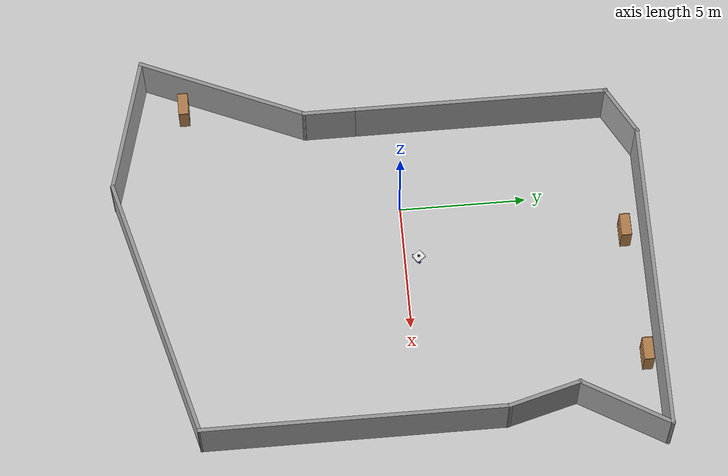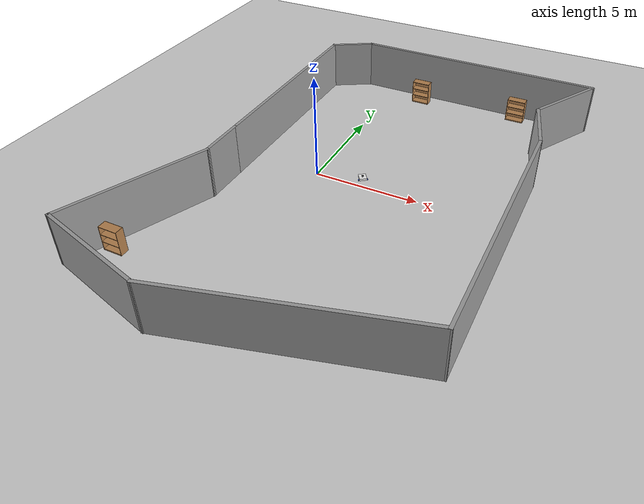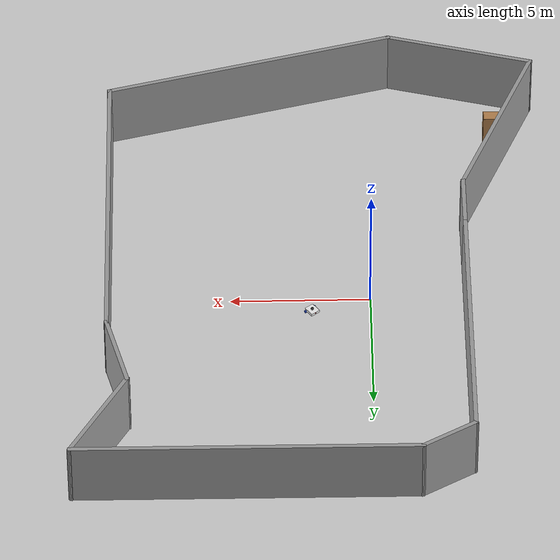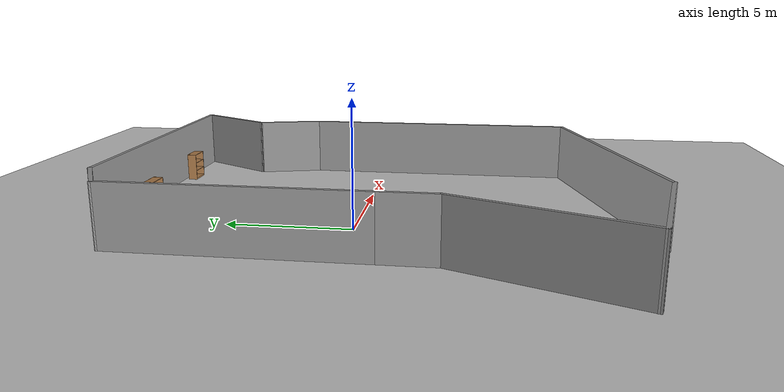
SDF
<sdf version="1.7">
 <world name="default">
  <light name="sun" type="directional">
   <pose>0 0 10 0 -0 0</pose>
   <diffuse>0.8 0.8 0.8 1</diffuse>
   <specular>0.2 0.2 0.2 1</specular>
   <attenuation>
    <range>1000</range>
    <constant>0.9</constant>
    <linear>0.01</linear>
    <quadratic>0.001</quadratic>
   </attenuation>
   <direction>-0.5 0.1 -0.9</direction>
   <spot><inner_angle>0</inner_angle><outer_angle>0</outer_angle><falloff>0</falloff></spot>
  </light>
  <model name="ground_plane">
   <static>1</static>
   <link name="link">
    <collision name="collision">
     <geometry><plane><normal>0 0 1</normal><size>100 100</size></plane></geometry>
     <surface><friction><ode><mu>100</mu><mu2>50</mu2></ode></friction></surface>
    </collision>
    <visual name="visual">
     <cast_shadows>0</cast_shadows>
     <geometry><plane><normal>0 0 1</normal><size>100 100</size></plane></geometry>
     <material>
      <script><uri>file://media/materials/scripts/gazebo.material</uri><name>Gazebo/Grey</name></script>
     </material>
    </visual>
   </link>
  </model>
  <gravity>0 0 -9.8</gravity>
  <magnetic_field>6e-06 2.3e-05 -4.2e-05</magnetic_field>
  <atmosphere type="adiabatic"/>
  <physics type="ode">
   <max_step_size>0.001</max_step_size>
   <real_time_factor>1</real_time_factor>
   <real_time_update_rate>1000</real_time_update_rate>
  </physics>
  <scene><ambient>0.4 0.4 0.4 1</ambient><background>0.7 0.7 0.7 1</background><shadows>1</shadows></scene>
  <spherical_coordinates>
   <surface_model>EARTH_WGS84</surface_model>
   <latitude_deg>0</latitude_deg>
   <longitude_deg>0</longitude_deg>
   <elevation>0</elevation>
   <heading_deg>0</heading_deg>
  </spherical_coordinates>
  <model name="my_bot">
   <link name="base_link">
    <inertial>
     <pose>0.23125 0 0.070313 0 -0 0</pose>
     <mass>1.6</mass>
     <inertia>
      <ixx>0.0139232</ixx>
      <ixy>0</ixy>
      <ixz>0.00476563</ixz>
      <iyy>0.0304857</iyy>
      <iyz>0</iyz>
      <izz>0.0377042</izz>
     </inertia>
    </inertial>
    <collision name="base_link_fixed_joint_lump__chassis_collision">
     <pose>0.1 0 1 0 -0 0</pose>
     <geometry><box><size>0.4 0.35 0.1</size></box></geometry>
    </collision>
    <collision name="base_link_fixed_joint_lump__caster_wheel_collision_1">
     <pose>0.2 0 0 0 -0 0</pose>
     <geometry><sphere><radius>0.05</radius></sphere></geometry>
     <surface><friction><ode><mu>0.001</mu><mu2>0.001</mu2></ode></friction></surface>
    </collision>
    <collision name="base_link_fixed_joint_lump__laser_frame_collision_2">
     <pose>0.1 0 0.125 0 -0 0</pose>
     <geometry><cylinder><length>0.04</length><radius>0.05</radius></cylinder></geometry>
    </collision>
    <visual name="base_link_fixed_joint_lump__chassis_visual">
     <pose>0.1 0 0.05 0 -0 0</pose>
     <geometry><box><size>0.4 0.35 0.1</size></box></geometry>
     <material>
      <script><name>Gazebo/White</name><uri>file://media/materials/scripts/gazebo.material</uri></script>
     </material>
    </visual>
    <visual name="base_link_fixed_joint_lump__camera_link_visual_1">
     <pose>0.31 0 0.07 0 -0 0</pose>
     <geometry><box><size>0.01 0.03 0.03</size></box></geometry>
     <material>
      <script><name>Gazebo/Red</name><uri>file://media/materials/scripts/gazebo.material</uri></script>
     </material>
    </visual>
    <visual name="base_link_fixed_joint_lump__caster_wheel_visual_2">
     <pose>0.2 0 0 0 -0 0</pose>
     <geometry><sphere><radius>0.05</radius></sphere></geometry>
     <material>
      <script><name>Gazebo/Black</name><uri>file://media/materials/scripts/gazebo.material</uri></script>
     </material>
    </visual>
    <visual name="base_link_fixed_joint_lump__laser_frame_visual_3">
     <pose>0.1 0 0.125 0 -0 0</pose>
     <geometry><cylinder><length>0.04</length><radius>0.05</radius></cylinder></geometry>
     <material>
      <script><name>Gazebo/Black</name><uri>file://media/materials/scripts/gazebo.material</uri></script>
     </material>
    </visual>
    <sensor name="camera" type="camera">
     <visualize>1</visualize>
     <update_rate>10</update_rate>
     <camera>
      <horizontal_fov>1.089</horizontal_fov>
      <image><format>R8G8B8</format><width>640</width><height>480</height></image>
      <clip><near>0.05</near><far>8</far></clip>
     </camera>
     <plugin name="camera_controller" filename="libgazebo_ros_camera.so">
      <frame_name>camera_link_optical</frame_name>
     </plugin>
     <pose>0.31 0 0.07 0 -0 0</pose>
    </sensor>
    <sensor name="laser" type="ray">
     <visualize>0</visualize>
     <update_rate>10</update_rate>
     <ray>
      <scan>
       <horizontal>
        <samples>360</samples>
        <min_angle>-3.14</min_angle>
        <max_angle>3.14</max_angle>
        <resolution>1</resolution>
       </horizontal>
       <vertical><samples>1</samples><min_angle>0</min_angle><max_angle>0</max_angle></vertical>
      </scan>
      <range><min>0.3</min><max>12</max></range>
     </ray>
     <plugin name="laser_controller" filename="libgazebo_ros_ray_sensor.so">
      <ros><argument>~/out:=scan</argument></ros>
      <output_type>sensor_msgs/LaserScan</output_type>
      <frame_name>laser_frame</frame_name>
     </plugin>
     <pose>0.1 0 0.125 0 -0 0</pose>
    </sensor>
   </link>
   <joint name="left_wheel_joint" type="revolute">
    <pose relative_to="base_link">-0.02 0.20416 0 -1.5708 0 0</pose>
    <parent>base_link</parent>
    <child>left_wheel</child>
    <axis>
     <xyz>0 0 1</xyz>
     <limit><lower>-1e+16</lower><upper>1e+16</upper></limit>
     <dynamics><spring_reference>0</spring_reference><spring_stiffness>0</spring_stiffness></dynamics>
    </axis>
   </joint>
   <link name="left_wheel">
    <pose relative_to="left_wheel_joint">0 0 0 0 -0 0</pose>
    <inertial>
     <mass>0.5</mass>
     <inertia>
      <ixx>0.000379167</ixx>
      <ixy>0</ixy>
      <ixz>0</ixz>
      <iyy>0.000379167</iyy>
      <iyz>0</iyz>
      <izz>0.000625</izz>
     </inertia>
    </inertial>
    <collision name="left_wheel_collision">
     <geometry><cylinder><length>0.04</length><radius>0.05</radius></cylinder></geometry>
    </collision>
    <visual name="left_wheel_visual">
     <geometry><cylinder><length>0.04</length><radius>0.05</radius></cylinder></geometry>
     <material>
      <script><name>Gazebo/Blue</name><uri>file://media/materials/scripts/gazebo.material</uri></script>
     </material>
    </visual>
   </link>
   <joint name="right_wheel_joint" type="revolute">
    <pose relative_to="base_link">-0.02 -0.20416 0 1.5708 -0 0</pose>
    <parent>base_link</parent>
    <child>right_wheel</child>
    <axis>
     <xyz>0 0 -1</xyz>
     <limit><lower>-1e+16</lower><upper>1e+16</upper></limit>
     <dynamics><spring_reference>0</spring_reference><spring_stiffness>0</spring_stiffness></dynamics>
    </axis>
   </joint>
   <link name="right_wheel">
    <pose relative_to="right_wheel_joint">0 0 0 0 -0 0</pose>
    <inertial>
     <mass>0.5</mass>
     <inertia>
      <ixx>0.000379167</ixx>
      <ixy>0</ixy>
      <ixz>0</ixz>
      <iyy>0.000379167</iyy>
      <iyz>0</iyz>
      <izz>0.000625</izz>
     </inertia>
    </inertial>
    <collision name="right_wheel_collision">
     <geometry><cylinder><length>0.04</length><radius>0.05</radius></cylinder></geometry>
    </collision>
    <visual name="right_wheel_visual">
     <geometry><cylinder><length>0.04</length><radius>0.05</radius></cylinder></geometry>
     <material>
      <script><name>Gazebo/Blue</name><uri>file://media/materials/scripts/gazebo.material</uri></script>
     </material>
    </visual>
   </link>
   <plugin name="gazebo_ros2_control" filename="libgazebo_ros2_control.so">
    <parameters>/home/mohamed/medotest_ws/install/medo/share/medo/config/my_controllers.yaml</parameters>
    <parameters>/home/mohamed/medotest_ws/install/medo/share/medo/config/gaz_ros2_ctl_use_sim.yaml</parameters>
   </plugin>
   <frame name="base_footprint_joint" attached_to="base_link"/>
   <frame name="base_footprint" attached_to="base_footprint_joint"/>
   <frame name="camera_optical_joint" attached_to="camera_link"><pose>0 0 0 -1.5708 -0 -1.5708</pose></frame>
   <frame name="camera_link_optical" attached_to="camera_optical_joint"/>
   <frame name="camera_joint" attached_to="chassis"><pose>0.41 0 0.07 0 -0 0</pose></frame>
   <frame name="camera_link" attached_to="camera_joint"/>
   <frame name="caster_wheel_joint" attached_to="chassis"><pose>0.3 0 0 0 -0 0</pose></frame>
   <frame name="caster_wheel" attached_to="caster_wheel_joint"/>
   <frame name="laser_joint" attached_to="chassis"><pose>0.2 0 0.125 0 -0 0</pose></frame>
   <frame name="laser_frame" attached_to="laser_joint"/>
   <frame name="chassis_joint" attached_to="base_link"><pose>-0.1 0 0 0 -0 0</pose></frame>
   <frame name="chassis" attached_to="chassis_joint"/>
   <pose>2.14241 0.487094 0.05 0 1.8e-05 2.20551</pose>
  </model>
  <model name="Untitled9599">
   <pose>2.22376 -0.85499 0 0 -0 0</pose>
   <link name="Wall_0">
    <collision name="Wall_0_Collision">
     <geometry><box><size>2.25 0.15 2.5</size></box></geometry>
     <pose>0 0 1.25 0 -0 0</pose>
    </collision>
    <visual name="Wall_0_Visual">
     <pose>0 0 1.25 0 -0 0</pose>
     <geometry><box><size>2.25 0.15 2.5</size></box></geometry>
     <material>
      <script><uri>file://media/materials/scripts/gazebo.material</uri><name>Gazebo/Grey</name></script>
      <ambient>1 1 1 1</ambient>
     </material>
     <meta><layer>0</layer></meta>
    </visual>
    <pose>-5.62376 -1.61501 0 0 -0 1.5708</pose>
   </link>
   <link name="Wall_1">
    <collision name="Wall_1_Collision">
     <geometry><box><size>10 0.15 2.5</size></box></geometry>
     <pose>0 0 1.25 0 -0 0</pose>
    </collision>
    <visual name="Wall_1_Visual">
     <pose>0 0 1.25 0 -0 0</pose>
     <geometry><box><size>10 0.15 2.5</size></box></geometry>
     <material>
      <script><uri>file://media/materials/scripts/gazebo.material</uri><name>Gazebo/Grey</name></script>
      <ambient>1 1 1 1</ambient>
     </material>
     <meta><layer>0</layer></meta>
    </visual>
    <pose>-5.62376 4.35999 0 0 -0 1.5708</pose>
   </link>
   <link name="Wall_2">
    <collision name="Wall_2_Collision">
     <geometry><box><size>2.25 0.15 2.5</size></box></geometry>
     <pose>0 0 1.25 0 -0 0</pose>
    </collision>
    <visual name="Wall_2_Visual">
     <pose>0 0 1.25 0 -0 0</pose>
     <geometry><box><size>2.25 0.15 2.5</size></box></geometry>
     <material>
      <script><uri>file://media/materials/scripts/gazebo.material</uri><name>Gazebo/Grey</name></script>
      <ambient>1 1 1 1</ambient>
     </material>
     <meta><layer>0</layer></meta>
    </visual>
    <pose>-4.71443 9.80999 0 0 -0 0.523599</pose>
   </link>
   <link name="Wall_3">
    <collision name="Wall_3_Collision">
     <geometry><box><size>12.25 0.15 2.5</size></box></geometry>
     <pose>0 0 1.25 0 -0 0</pose>
    </collision>
    <visual name="Wall_3_Visual">
     <pose>0 0 1.25 0 -0 0</pose>
     <geometry><box><size>12.25 0.15 2.5</size></box></geometry>
     <material>
      <script><uri>file://media/materials/scripts/gazebo.material</uri><name>Gazebo/Grey</name></script>
      <ambient>1 1 1 1</ambient>
     </material>
     <meta><layer>0</layer></meta>
    </visual>
    <pose>2.24489 10.335 0 0 -0 0</pose>
   </link>
   <link name="Wall_4">
    <collision name="Wall_4_Collision">
     <geometry><box><size>4 0.15 2.5</size></box></geometry>
     <pose>0 0 1.25 0 -0 0</pose>
    </collision>
    <visual name="Wall_4_Visual">
     <pose>0 0 1.25 0 -0 0</pose>
     <geometry><box><size>4 0.15 2.5</size></box></geometry>
     <material>
      <script><uri>file://media/materials/scripts/gazebo.material</uri><name>Gazebo/Grey</name></script>
      <ambient>1 1 1 1</ambient>
     </material>
     <meta><layer>0</layer></meta>
    </visual>
    <pose>7.33239 8.66789 0 0 -0 -2.0944</pose>
   </link>
   <link name="Wall_5">
    <collision name="Wall_5_Collision">
     <geometry><box><size>3 0.15 2.5</size></box></geometry>
     <pose>0 0 1.25 0 -0 0</pose>
    </collision>
    <visual name="Wall_5_Visual">
     <pose>0 0 1.25 0 -0 0</pose>
     <geometry><box><size>3 0.15 2.5</size></box></geometry>
     <material>
      <script><uri>file://media/materials/scripts/gazebo.material</uri><name>Gazebo/Grey</name></script>
      <ambient>1 1 1 1</ambient>
     </material>
     <meta><layer>0</layer></meta>
    </visual>
    <pose>6.73871 5.62434 0 0 -0 -1.309</pose>
   </link>
   <link name="Wall_6">
    <collision name="Wall_6_Collision">
     <geometry><box><size>12 0.15 2.5</size></box></geometry>
     <pose>0 0 1.25 0 -0 0</pose>
    </collision>
    <visual name="Wall_6_Visual">
     <pose>0 0 1.25 0 -0 0</pose>
     <geometry><box><size>12 0.15 2.5</size></box></geometry>
     <material>
      <script><uri>file://media/materials/scripts/gazebo.material</uri><name>Gazebo/Grey</name></script>
      <ambient>1 1 1 1</ambient>
     </material>
     <meta><layer>0</layer></meta>
    </visual>
    <pose>7.10753 -1.6771 0 0 -0 -1.5708</pose>
   </link>
   <link name="Wall_7">
    <collision name="Wall_7_Collision">
     <geometry><box><size>10.75 0.15 2.5</size></box></geometry>
     <pose>0 0 1.25 0 -0 0</pose>
    </collision>
    <visual name="Wall_7_Visual">
     <pose>0 0 1.25 0 -0 0</pose>
     <geometry><box><size>10.75 0.15 2.5</size></box></geometry>
     <material>
      <script><uri>file://media/materials/scripts/gazebo.material</uri><name>Gazebo/Grey</name></script>
      <ambient>1 1 1 1</ambient>
     </material>
     <meta><layer>0</layer></meta>
    </visual>
    <pose>1.98812 -8.97384 0 0 -0 -2.87979</pose>
   </link>
   <link name="Wall_8">
    <collision name="Wall_8_Collision">
     <geometry><box><size>5.5 0.15 2.5</size></box></geometry>
     <pose>0 0 1.25 0 -0 0</pose>
    </collision>
    <visual name="Wall_8_Visual">
     <pose>0 0 1.25 0 -0 0</pose>
     <geometry><box><size>5.5 0.15 2.5</size></box></geometry>
     <material>
      <script><uri>file://media/materials/scripts/gazebo.material</uri><name>Gazebo/Grey</name></script>
      <ambient>1 1 1 1</ambient>
     </material>
     <meta><layer>0</layer></meta>
    </visual>
    <pose>-5.71514 -9.65324 0 0 -0 2.87979</pose>
   </link>
   <link name="Wall_9">
    <collision name="Wall_9_Collision">
     <geometry><box><size>6.99069 0.15 2.5</size></box></geometry>
     <pose>0 0 1.25 0 -0 0</pose>
    </collision>
    <visual name="Wall_9_Visual">
     <pose>0 0 1.25 0 -0 0</pose>
     <geometry><box><size>6.99069 0.15 2.5</size></box></geometry>
     <material>
      <script><uri>file://media/materials/scripts/gazebo.material</uri><name>Gazebo/Grey</name></script>
      <ambient>1 1 1 1</ambient>
     </material>
     <meta><layer>0</layer></meta>
    </visual>
    <pose>-6.96137 -5.81296 0 0 -0 1.169</pose>
   </link>
   <static>1</static>
  </model>
  <model name="bookshelf">
   <static>1</static>
   <link name="link">
    <inertial><mass>1</mass></inertial>
    <collision name="back">
     <pose>0 0.005 0.6 0 -0 0</pose>
     <geometry><box><size>0.9 0.01 1.2</size></box></geometry>
    </collision>
    <visual name="visual1">
     <pose>0 0.005 0.6 0 -0 0</pose>
     <geometry><box><size>0.9 0.01 1.2</size></box></geometry>
     <material>
      <script><uri>file://media/materials/scripts/gazebo.material</uri><name>Gazebo/Wood</name></script>
     </material>
    </visual>
    <collision name="left_side">
     <pose>0.45 -0.195 0.6 0 -0 0</pose>
     <geometry><box><size>0.02 0.4 1.2</size></box></geometry>
    </collision>
    <visual name="visual2">
     <pose>0.45 -0.195 0.6 0 -0 0</pose>
     <geometry><box><size>0.02 0.4 1.2</size></box></geometry>
     <material>
      <script><uri>file://media/materials/scripts/gazebo.material</uri><name>Gazebo/Wood</name></script>
     </material>
    </visual>
    <collision name="right_side">
     <pose>-0.45 -0.195 0.6 0 -0 0</pose>
     <geometry><box><size>0.02 0.4 1.2</size></box></geometry>
    </collision>
    <visual name="visual3">
     <pose>-0.45 -0.195 0.6 0 -0 0</pose>
     <geometry><box><size>0.02 0.4 1.2</size></box></geometry>
     <material>
      <script><uri>file://media/materials/scripts/gazebo.material</uri><name>Gazebo/Wood</name></script>
     </material>
    </visual>
    <collision name="bottom">
     <pose>0 -0.195 0.03 0 -0 0</pose>
     <geometry><box><size>0.88 0.4 0.06</size></box></geometry>
    </collision>
    <visual name="visual4">
     <pose>0 -0.195 0.03 0 -0 0</pose>
     <geometry><box><size>0.88 0.4 0.06</size></box></geometry>
     <material>
      <script><uri>file://media/materials/scripts/gazebo.material</uri><name>Gazebo/Wood</name></script>
     </material>
    </visual>
    <collision name="top">
     <pose>0 -0.195 1.19 0 -0 0</pose>
     <geometry><box><size>0.88 0.4 0.02</size></box></geometry>
    </collision>
    <visual name="visual5">
     <pose>0 -0.195 1.19 0 -0 0</pose>
     <geometry><box><size>0.88 0.4 0.02</size></box></geometry>
     <material>
      <script><uri>file://media/materials/scripts/gazebo.material</uri><name>Gazebo/Wood</name></script>
     </material>
    </visual>
    <collision name="low_shelf">
     <pose>0 -0.195 0.43 0 -0 0</pose>
     <geometry><box><size>0.88 0.4 0.02</size></box></geometry>
    </collision>
    <visual name="visual6">
     <pose>0 -0.195 0.43 0 -0 0</pose>
     <geometry><box><size>0.88 0.4 0.02</size></box></geometry>
     <material>
      <script><uri>file://media/materials/scripts/gazebo.material</uri><name>Gazebo/Wood</name></script>
     </material>
    </visual>
    <collision name="high_shelf">
     <pose>0 -0.195 0.8 0 -0 0</pose>
     <geometry><box><size>0.88 0.4 0.02</size></box></geometry>
    </collision>
    <visual name="visual7">
     <pose>0 -0.195 0.8 0 -0 0</pose>
     <geometry><box><size>0.88 0.4 0.02</size></box></geometry>
     <material>
      <script><uri>file://media/materials/scripts/gazebo.material</uri><name>Gazebo/Wood</name></script>
     </material>
    </visual>
   </link>
   <pose>1.83553 8.9362 0 0 -0 0</pose>
  </model>
  <model name="bookshelf_0">
   <static>1</static>
   <link name="link">
    <inertial><mass>1</mass></inertial>
    <collision name="back">
     <pose>0 0.005 0.6 0 -0 0</pose>
     <geometry><box><size>0.9 0.01 1.2</size></box></geometry>
    </collision>
    <visual name="visual1">
     <pose>0 0.005 0.6 0 -0 0</pose>
     <geometry><box><size>0.9 0.01 1.2</size></box></geometry>
     <material>
      <script><uri>file://media/materials/scripts/gazebo.material</uri><name>Gazebo/Wood</name></script>
     </material>
    </visual>
    <collision name="left_side">
     <pose>0.45 -0.195 0.6 0 -0 0</pose>
     <geometry><box><size>0.02 0.4 1.2</size></box></geometry>
    </collision>
    <visual name="visual2">
     <pose>0.45 -0.195 0.6 0 -0 0</pose>
     <geometry><box><size>0.02 0.4 1.2</size></box></geometry>
     <material>
      <script><uri>file://media/materials/scripts/gazebo.material</uri><name>Gazebo/Wood</name></script>
     </material>
    </visual>
    <collision name="right_side">
     <pose>-0.45 -0.195 0.6 0 -0 0</pose>
     <geometry><box><size>0.02 0.4 1.2</size></box></geometry>
    </collision>
    <visual name="visual3">
     <pose>-0.45 -0.195 0.6 0 -0 0</pose>
     <geometry><box><size>0.02 0.4 1.2</size></box></geometry>
     <material>
      <script><uri>file://media/materials/scripts/gazebo.material</uri><name>Gazebo/Wood</name></script>
     </material>
    </visual>
    <collision name="bottom">
     <pose>0 -0.195 0.03 0 -0 0</pose>
     <geometry><box><size>0.88 0.4 0.06</size></box></geometry>
    </collision>
    <visual name="visual4">
     <pose>0 -0.195 0.03 0 -0 0</pose>
     <geometry><box><size>0.88 0.4 0.06</size></box></geometry>
     <material>
      <script><uri>file://media/materials/scripts/gazebo.material</uri><name>Gazebo/Wood</name></script>
     </material>
    </visual>
    <collision name="top">
     <pose>0 -0.195 1.19 0 -0 0</pose>
     <geometry><box><size>0.88 0.4 0.02</size></box></geometry>
    </collision>
    <visual name="visual5">
     <pose>0 -0.195 1.19 0 -0 0</pose>
     <geometry><box><size>0.88 0.4 0.02</size></box></geometry>
     <material>
      <script><uri>file://media/materials/scripts/gazebo.material</uri><name>Gazebo/Wood</name></script>
     </material>
    </visual>
    <collision name="low_shelf">
     <pose>0 -0.195 0.43 0 -0 0</pose>
     <geometry><box><size>0.88 0.4 0.02</size></box></geometry>
    </collision>
    <visual name="visual6">
     <pose>0 -0.195 0.43 0 -0 0</pose>
     <geometry><box><size>0.88 0.4 0.02</size></box></geometry>
     <material>
      <script><uri>file://media/materials/scripts/gazebo.material</uri><name>Gazebo/Wood</name></script>
     </material>
    </visual>
    <collision name="high_shelf">
     <pose>0 -0.195 0.8 0 -0 0</pose>
     <geometry><box><size>0.88 0.4 0.02</size></box></geometry>
    </collision>
    <visual name="visual7">
     <pose>0 -0.195 0.8 0 -0 0</pose>
     <geometry><box><size>0.88 0.4 0.02</size></box></geometry>
     <material>
      <script><uri>file://media/materials/scripts/gazebo.material</uri><name>Gazebo/Wood</name></script>
     </material>
    </visual>
   </link>
   <pose>7.03803 9.23751 0 0 -0 0</pose>
  </model>
  <model name="bookshelf_1">
   <static>1</static>
   <link name="link">
    <inertial><mass>1</mass></inertial>
    <collision name="back">
     <pose>0 0.005 0.6 0 -0 0</pose>
     <geometry><box><size>0.9 0.01 1.2</size></box></geometry>
    </collision>
    <visual name="visual1">
     <pose>0 0.005 0.6 0 -0 0</pose>
     <geometry><box><size>0.9 0.01 1.2</size></box></geometry>
     <material>
      <script><uri>file://media/materials/scripts/gazebo.material</uri><name>Gazebo/Wood</name></script>
     </material>
    </visual>
    <collision name="left_side">
     <pose>0.45 -0.195 0.6 0 -0 0</pose>
     <geometry><box><size>0.02 0.4 1.2</size></box></geometry>
    </collision>
    <visual name="visual2">
     <pose>0.45 -0.195 0.6 0 -0 0</pose>
     <geometry><box><size>0.02 0.4 1.2</size></box></geometry>
     <material>
      <script><uri>file://media/materials/scripts/gazebo.material</uri><name>Gazebo/Wood</name></script>
     </material>
    </visual>
    <collision name="right_side">
     <pose>-0.45 -0.195 0.6 0 -0 0</pose>
     <geometry><box><size>0.02 0.4 1.2</size></box></geometry>
    </collision>
    <visual name="visual3">
     <pose>-0.45 -0.195 0.6 0 -0 0</pose>
     <geometry><box><size>0.02 0.4 1.2</size></box></geometry>
     <material>
      <script><uri>file://media/materials/scripts/gazebo.material</uri><name>Gazebo/Wood</name></script>
     </material>
    </visual>
    <collision name="bottom">
     <pose>0 -0.195 0.03 0 -0 0</pose>
     <geometry><box><size>0.88 0.4 0.06</size></box></geometry>
    </collision>
    <visual name="visual4">
     <pose>0 -0.195 0.03 0 -0 0</pose>
     <geometry><box><size>0.88 0.4 0.06</size></box></geometry>
     <material>
      <script><uri>file://media/materials/scripts/gazebo.material</uri><name>Gazebo/Wood</name></script>
     </material>
    </visual>
    <collision name="top">
     <pose>0 -0.195 1.19 0 -0 0</pose>
     <geometry><box><size>0.88 0.4 0.02</size></box></geometry>
    </collision>
    <visual name="visual5">
     <pose>0 -0.195 1.19 0 -0 0</pose>
     <geometry><box><size>0.88 0.4 0.02</size></box></geometry>
     <material>
      <script><uri>file://media/materials/scripts/gazebo.material</uri><name>Gazebo/Wood</name></script>
     </material>
    </visual>
    <collision name="low_shelf">
     <pose>0 -0.195 0.43 0 -0 0</pose>
     <geometry><box><size>0.88 0.4 0.02</size></box></geometry>
    </collision>
    <visual name="visual6">
     <pose>0 -0.195 0.43 0 -0 0</pose>
     <geometry><box><size>0.88 0.4 0.02</size></box></geometry>
     <material>
      <script><uri>file://media/materials/scripts/gazebo.material</uri><name>Gazebo/Wood</name></script>
     </material>
    </visual>
    <collision name="high_shelf">
     <pose>0 -0.195 0.8 0 -0 0</pose>
     <geometry><box><size>0.88 0.4 0.02</size></box></geometry>
    </collision>
    <visual name="visual7">
     <pose>0 -0.195 0.8 0 -0 0</pose>
     <geometry><box><size>0.88 0.4 0.02</size></box></geometry>
     <material>
      <script><uri>file://media/materials/scripts/gazebo.material</uri><name>Gazebo/Wood</name></script>
     </material>
    </visual>
   </link>
   <pose>-4.79576 -8.09715 0 0 -0 0</pose>
  </model>
 </world>
</sdf>
